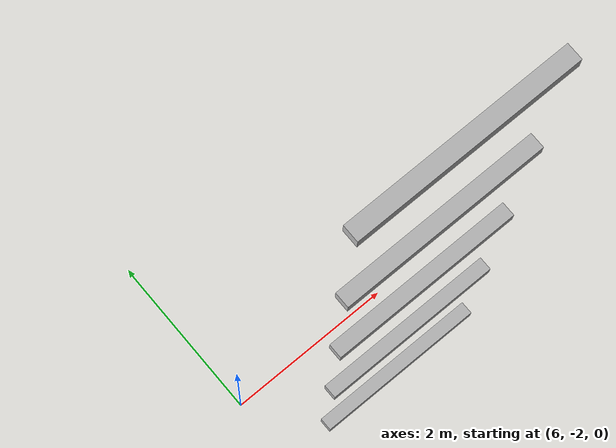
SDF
<sdf version="1.7">
 <world name="default">
  <model name="orthogonal_747_2.000.15_TS">
   <static>1</static>
   <link name="x_link_1_1_6">
    <inertial>
     <mass>1</mass>
     <inertia>
      <ixx>0.166667</ixx>
      <ixy>0</ixy>
      <ixz>0</ixz>
      <iyy>0.166667</iyy>
      <iyz>0</iyz>
      <izz>0.166667</izz>
     </inertia>
    </inertial>
    <pose>13.975 2.15 3.225 0 -0 0</pose>
    <visual name="visual_0">
     <laser_retro>1100</laser_retro>
     <geometry><box><size>2 1e-06 0.15</size></box></geometry>
     <material>
      <script><name>Gazebo/Grey</name><uri>file://media/materials/scripts/gazebo.material</uri></script>
      <shader type="pixel"><normal_map>__default__</normal_map></shader>
      <ambient>0.678 0.498 0.659 1</ambient>
      <diffuse>0.7 0.7 0.7 1</diffuse>
      <specular>0.01 0.01 0.01 1</specular>
      <emissive>0 0 0 1</emissive>
     </material>
     <pose>0 -0.075 0 0 -0 0</pose>
     <transparency>1</transparency>
    </visual>
    <visual name="visual_1">
     <laser_retro>1101</laser_retro>
     <geometry><box><size>2 1e-06 0.15</size></box></geometry>
     <material>
      <script><name>Gazebo/Grey</name><uri>file://media/materials/scripts/gazebo.material</uri></script>
      <shader type="pixel"><normal_map>__default__</normal_map></shader>
      <ambient>0.447 0.624 0.812 1</ambient>
      <diffuse>0.7 0.7 0.7 1</diffuse>
      <specular>0.01 0.01 0.01 1</specular>
      <emissive>0 0 0 1</emissive>
     </material>
     <pose>0 0.075 0 0 -0 0</pose>
     <transparency>1</transparency>
    </visual>
    <visual name="visual_2">
     <laser_retro>1102</laser_retro>
     <geometry><box><size>2 0.15 1e-06</size></box></geometry>
     <material>
      <script><name>Gazebo/Grey</name><uri>file://media/materials/scripts/gazebo.material</uri></script>
      <shader type="pixel"><normal_map>__default__</normal_map></shader>
      <ambient>0.988 0.686 0.243 1</ambient>
      <diffuse>0.7 0.7 0.7 1</diffuse>
      <specular>0.01 0.01 0.01 1</specular>
      <emissive>0 0 0 1</emissive>
     </material>
     <pose>0 0 -0.075 0 -0 0</pose>
     <transparency>1</transparency>
    </visual>
    <visual name="visual_3">
     <laser_retro>1103</laser_retro>
     <geometry><box><size>1e-06 0.15 0.15</size></box></geometry>
     <material>
      <script><name>Gazebo/Grey</name><uri>file://media/materials/scripts/gazebo.material</uri></script>
      <shader type="pixel"><normal_map>__default__</normal_map></shader>
      <ambient>0.988 0.914 0.31 1</ambient>
      <diffuse>0.7 0.7 0.7 1</diffuse>
      <specular>0.01 0.01 0.01 1</specular>
      <emissive>0 0 0 1</emissive>
     </material>
     <pose>1 0 0 0 -0 0</pose>
     <transparency>1</transparency>
    </visual>
    <visual name="visual_4">
     <laser_retro>1104</laser_retro>
     <geometry><box><size>2 0.15 1e-06</size></box></geometry>
     <material>
      <script><name>Gazebo/Grey</name><uri>file://media/materials/scripts/gazebo.material</uri></script>
      <shader type="pixel"><normal_map>__default__</normal_map></shader>
      <ambient>0.937 0.161 0.161 1</ambient>
      <diffuse>0.7 0.7 0.7 1</diffuse>
      <specular>0.01 0.01 0.01 1</specular>
      <emissive>0 0 0 1</emissive>
     </material>
     <pose>0 0 0.075 0 -0 0</pose>
     <transparency>1</transparency>
    </visual>
    <visual name="visual_5">
     <laser_retro>1105</laser_retro>
     <geometry><box><size>1e-06 0.15 0.15</size></box></geometry>
     <material>
      <script><name>Gazebo/Grey</name><uri>file://media/materials/scripts/gazebo.material</uri></script>
      <shader type="pixel"><normal_map>__default__</normal_map></shader>
      <ambient>0.541 0.886 0.204 1</ambient>
      <diffuse>0.7 0.7 0.7 1</diffuse>
      <specular>0.01 0.01 0.01 1</specular>
      <emissive>0 0 0 1</emissive>
     </material>
     <pose>-1 0 0 0 -0 0</pose>
     <transparency>1</transparency>
    </visual>
    <visual name="visual_texture">
     <geometry><box><size>1.9998 0.149985 0.149985</size></box></geometry>
     <material>
      <script>
       <uri>model://BASE_MODELS/simple_block_v2_textured/materials/scripts</uri>
       <uri>model://BASE_MODELS/simple_block_v2_textured/materials/textures</uri>
       <name>metal</name>
      </script>
     </material>
     <laser_retro>1106</laser_retro>
    </visual>
    <collision name="collision">
     <geometry><box><size>2 0.15 0.15</size></box></geometry>
     <surface>
      <friction>
       <ode><mu>1</mu><mu2>1</mu2><fdir1>0 0 0</fdir1><slip1>0</slip1><slip2>0</slip2></ode>
       <torsional>
        <coefficient>1</coefficient>
        <patch_radius>0</patch_radius>
        <surface_radius>0</surface_radius>
        <use_patch_radius>1</use_patch_radius>
        <ode><slip>0</slip></ode>
       </torsional>
      </friction>
      <bounce><restitution_coefficient>0</restitution_coefficient><threshold>1e+06</threshold></bounce>
      <contact>
       <collide_without_contact>0</collide_without_contact>
       <collide_without_contact_bitmask>1</collide_without_contact_bitmask>
       <collide_bitmask>1</collide_bitmask>
       <ode>
        <soft_cfm>0</soft_cfm>
        <soft_erp>0.2</soft_erp>
        <kp>1e+13</kp>
        <kd>1</kd>
        <max_vel>0.01</max_vel>
        <min_depth>0</min_depth>
       </ode>
       <bullet>
        <split_impulse>1</split_impulse>
        <split_impulse_penetration_threshold>-0.01</split_impulse_penetration_threshold>
        <soft_cfm>0</soft_cfm>
        <soft_erp>0.2</soft_erp>
        <kp>1e+13</kp>
        <kd>1</kd>
       </bullet>
      </contact>
     </surface>
    </collision>
   </link>
   <link name="x_link_2_1_6">
    <inertial>
     <mass>1</mass>
     <inertia>
      <ixx>0.166667</ixx>
      <ixy>0</ixy>
      <ixz>0</ixz>
      <iyy>0.166667</iyy>
      <iyz>0</iyz>
      <izz>0.166667</izz>
     </inertia>
    </inertial>
    <pose>13.975 2.15 5.375 0 -0 0</pose>
    <visual name="visual_0">
     <laser_retro>2003</laser_retro>
     <geometry><box><size>2 1e-06 0.15</size></box></geometry>
     <material>
      <script><name>Gazebo/Grey</name><uri>file://media/materials/scripts/gazebo.material</uri></script>
      <shader type="pixel"><normal_map>__default__</normal_map></shader>
      <ambient>0.678 0.498 0.659 1</ambient>
      <diffuse>0.7 0.7 0.7 1</diffuse>
      <specular>0.01 0.01 0.01 1</specular>
      <emissive>0 0 0 1</emissive>
     </material>
     <pose>0 -0.075 0 0 -0 0</pose>
     <transparency>1</transparency>
    </visual>
    <visual name="visual_1">
     <laser_retro>2004</laser_retro>
     <geometry><box><size>2 1e-06 0.15</size></box></geometry>
     <material>
      <script><name>Gazebo/Grey</name><uri>file://media/materials/scripts/gazebo.material</uri></script>
      <shader type="pixel"><normal_map>__default__</normal_map></shader>
      <ambient>0.447 0.624 0.812 1</ambient>
      <diffuse>0.7 0.7 0.7 1</diffuse>
      <specular>0.01 0.01 0.01 1</specular>
      <emissive>0 0 0 1</emissive>
     </material>
     <pose>0 0.075 0 0 -0 0</pose>
     <transparency>1</transparency>
    </visual>
    <visual name="visual_2">
     <laser_retro>2005</laser_retro>
     <geometry><box><size>2 0.15 1e-06</size></box></geometry>
     <material>
      <script><name>Gazebo/Grey</name><uri>file://media/materials/scripts/gazebo.material</uri></script>
      <shader type="pixel"><normal_map>__default__</normal_map></shader>
      <ambient>0.988 0.686 0.243 1</ambient>
      <diffuse>0.7 0.7 0.7 1</diffuse>
      <specular>0.01 0.01 0.01 1</specular>
      <emissive>0 0 0 1</emissive>
     </material>
     <pose>0 0 -0.075 0 -0 0</pose>
     <transparency>1</transparency>
    </visual>
    <visual name="visual_3">
     <laser_retro>2006</laser_retro>
     <geometry><box><size>1e-06 0.15 0.15</size></box></geometry>
     <material>
      <script><name>Gazebo/Grey</name><uri>file://media/materials/scripts/gazebo.material</uri></script>
      <shader type="pixel"><normal_map>__default__</normal_map></shader>
      <ambient>0.988 0.914 0.31 1</ambient>
      <diffuse>0.7 0.7 0.7 1</diffuse>
      <specular>0.01 0.01 0.01 1</specular>
      <emissive>0 0 0 1</emissive>
     </material>
     <pose>1 0 0 0 -0 0</pose>
     <transparency>1</transparency>
    </visual>
    <visual name="visual_4">
     <laser_retro>2007</laser_retro>
     <geometry><box><size>2 0.15 1e-06</size></box></geometry>
     <material>
      <script><name>Gazebo/Grey</name><uri>file://media/materials/scripts/gazebo.material</uri></script>
      <shader type="pixel"><normal_map>__default__</normal_map></shader>
      <ambient>0.937 0.161 0.161 1</ambient>
      <diffuse>0.7 0.7 0.7 1</diffuse>
      <specular>0.01 0.01 0.01 1</specular>
      <emissive>0 0 0 1</emissive>
     </material>
     <pose>0 0 0.075 0 -0 0</pose>
     <transparency>1</transparency>
    </visual>
    <visual name="visual_5">
     <laser_retro>2008</laser_retro>
     <geometry><box><size>1e-06 0.15 0.15</size></box></geometry>
     <material>
      <script><name>Gazebo/Grey</name><uri>file://media/materials/scripts/gazebo.material</uri></script>
      <shader type="pixel"><normal_map>__default__</normal_map></shader>
      <ambient>0.541 0.886 0.204 1</ambient>
      <diffuse>0.7 0.7 0.7 1</diffuse>
      <specular>0.01 0.01 0.01 1</specular>
      <emissive>0 0 0 1</emissive>
     </material>
     <pose>-1 0 0 0 -0 0</pose>
     <transparency>1</transparency>
    </visual>
    <visual name="visual_texture">
     <geometry><box><size>1.9998 0.149985 0.149985</size></box></geometry>
     <material>
      <script>
       <uri>model://BASE_MODELS/simple_block_v2_textured/materials/scripts</uri>
       <uri>model://BASE_MODELS/simple_block_v2_textured/materials/textures</uri>
       <name>metal</name>
      </script>
     </material>
     <laser_retro>2009</laser_retro>
    </visual>
    <collision name="collision">
     <geometry><box><size>2 0.15 0.15</size></box></geometry>
     <surface>
      <friction>
       <ode><mu>1</mu><mu2>1</mu2><fdir1>0 0 0</fdir1><slip1>0</slip1><slip2>0</slip2></ode>
       <torsional>
        <coefficient>1</coefficient>
        <patch_radius>0</patch_radius>
        <surface_radius>0</surface_radius>
        <use_patch_radius>1</use_patch_radius>
        <ode><slip>0</slip></ode>
       </torsional>
      </friction>
      <bounce><restitution_coefficient>0</restitution_coefficient><threshold>1e+06</threshold></bounce>
      <contact>
       <collide_without_contact>0</collide_without_contact>
       <collide_without_contact_bitmask>1</collide_without_contact_bitmask>
       <collide_bitmask>1</collide_bitmask>
       <ode>
        <soft_cfm>0</soft_cfm>
        <soft_erp>0.2</soft_erp>
        <kp>1e+13</kp>
        <kd>1</kd>
        <max_vel>0.01</max_vel>
        <min_depth>0</min_depth>
       </ode>
       <bullet>
        <split_impulse>1</split_impulse>
        <split_impulse_penetration_threshold>-0.01</split_impulse_penetration_threshold>
        <soft_cfm>0</soft_cfm>
        <soft_erp>0.2</soft_erp>
        <kp>1e+13</kp>
        <kd>1</kd>
       </bullet>
      </contact>
     </surface>
    </collision>
   </link>
   <link name="x_link_3_1_6">
    <inertial>
     <mass>1</mass>
     <inertia>
      <ixx>0.166667</ixx>
      <ixy>0</ixy>
      <ixz>0</ixz>
      <iyy>0.166667</iyy>
      <iyz>0</iyz>
      <izz>0.166667</izz>
     </inertia>
    </inertial>
    <pose>13.975 2.15 7.525 0 -0 0</pose>
    <visual name="visual_0">
     <laser_retro>2906</laser_retro>
     <geometry><box><size>2 1e-06 0.15</size></box></geometry>
     <material>
      <script><name>Gazebo/Grey</name><uri>file://media/materials/scripts/gazebo.material</uri></script>
      <shader type="pixel"><normal_map>__default__</normal_map></shader>
      <ambient>0.678 0.498 0.659 1</ambient>
      <diffuse>0.7 0.7 0.7 1</diffuse>
      <specular>0.01 0.01 0.01 1</specular>
      <emissive>0 0 0 1</emissive>
     </material>
     <pose>0 -0.075 0 0 -0 0</pose>
     <transparency>1</transparency>
    </visual>
    <visual name="visual_1">
     <laser_retro>2907</laser_retro>
     <geometry><box><size>2 1e-06 0.15</size></box></geometry>
     <material>
      <script><name>Gazebo/Grey</name><uri>file://media/materials/scripts/gazebo.material</uri></script>
      <shader type="pixel"><normal_map>__default__</normal_map></shader>
      <ambient>0.447 0.624 0.812 1</ambient>
      <diffuse>0.7 0.7 0.7 1</diffuse>
      <specular>0.01 0.01 0.01 1</specular>
      <emissive>0 0 0 1</emissive>
     </material>
     <pose>0 0.075 0 0 -0 0</pose>
     <transparency>1</transparency>
    </visual>
    <visual name="visual_2">
     <laser_retro>2908</laser_retro>
     <geometry><box><size>2 0.15 1e-06</size></box></geometry>
     <material>
      <script><name>Gazebo/Grey</name><uri>file://media/materials/scripts/gazebo.material</uri></script>
      <shader type="pixel"><normal_map>__default__</normal_map></shader>
      <ambient>0.988 0.686 0.243 1</ambient>
      <diffuse>0.7 0.7 0.7 1</diffuse>
      <specular>0.01 0.01 0.01 1</specular>
      <emissive>0 0 0 1</emissive>
     </material>
     <pose>0 0 -0.075 0 -0 0</pose>
     <transparency>1</transparency>
    </visual>
    <visual name="visual_3">
     <laser_retro>2909</laser_retro>
     <geometry><box><size>1e-06 0.15 0.15</size></box></geometry>
     <material>
      <script><name>Gazebo/Grey</name><uri>file://media/materials/scripts/gazebo.material</uri></script>
      <shader type="pixel"><normal_map>__default__</normal_map></shader>
      <ambient>0.988 0.914 0.31 1</ambient>
      <diffuse>0.7 0.7 0.7 1</diffuse>
      <specular>0.01 0.01 0.01 1</specular>
      <emissive>0 0 0 1</emissive>
     </material>
     <pose>1 0 0 0 -0 0</pose>
     <transparency>1</transparency>
    </visual>
    <visual name="visual_4">
     <laser_retro>2910</laser_retro>
     <geometry><box><size>2 0.15 1e-06</size></box></geometry>
     <material>
      <script><name>Gazebo/Grey</name><uri>file://media/materials/scripts/gazebo.material</uri></script>
      <shader type="pixel"><normal_map>__default__</normal_map></shader>
      <ambient>0.937 0.161 0.161 1</ambient>
      <diffuse>0.7 0.7 0.7 1</diffuse>
      <specular>0.01 0.01 0.01 1</specular>
      <emissive>0 0 0 1</emissive>
     </material>
     <pose>0 0 0.075 0 -0 0</pose>
     <transparency>1</transparency>
    </visual>
    <visual name="visual_5">
     <laser_retro>2911</laser_retro>
     <geometry><box><size>1e-06 0.15 0.15</size></box></geometry>
     <material>
      <script><name>Gazebo/Grey</name><uri>file://media/materials/scripts/gazebo.material</uri></script>
      <shader type="pixel"><normal_map>__default__</normal_map></shader>
      <ambient>0.541 0.886 0.204 1</ambient>
      <diffuse>0.7 0.7 0.7 1</diffuse>
      <specular>0.01 0.01 0.01 1</specular>
      <emissive>0 0 0 1</emissive>
     </material>
     <pose>-1 0 0 0 -0 0</pose>
     <transparency>1</transparency>
    </visual>
    <visual name="visual_texture">
     <geometry><box><size>1.9998 0.149985 0.149985</size></box></geometry>
     <material>
      <script>
       <uri>model://BASE_MODELS/simple_block_v2_textured/materials/scripts</uri>
       <uri>model://BASE_MODELS/simple_block_v2_textured/materials/textures</uri>
       <name>metal</name>
      </script>
     </material>
     <laser_retro>2912</laser_retro>
    </visual>
    <collision name="collision">
     <geometry><box><size>2 0.15 0.15</size></box></geometry>
     <surface>
      <friction>
       <ode><mu>1</mu><mu2>1</mu2><fdir1>0 0 0</fdir1><slip1>0</slip1><slip2>0</slip2></ode>
       <torsional>
        <coefficient>1</coefficient>
        <patch_radius>0</patch_radius>
        <surface_radius>0</surface_radius>
        <use_patch_radius>1</use_patch_radius>
        <ode><slip>0</slip></ode>
       </torsional>
      </friction>
      <bounce><restitution_coefficient>0</restitution_coefficient><threshold>1e+06</threshold></bounce>
      <contact>
       <collide_without_contact>0</collide_without_contact>
       <collide_without_contact_bitmask>1</collide_without_contact_bitmask>
       <collide_bitmask>1</collide_bitmask>
       <ode>
        <soft_cfm>0</soft_cfm>
        <soft_erp>0.2</soft_erp>
        <kp>1e+13</kp>
        <kd>1</kd>
        <max_vel>0.01</max_vel>
        <min_depth>0</min_depth>
       </ode>
       <bullet>
        <split_impulse>1</split_impulse>
        <split_impulse_penetration_threshold>-0.01</split_impulse_penetration_threshold>
        <soft_cfm>0</soft_cfm>
        <soft_erp>0.2</soft_erp>
        <kp>1e+13</kp>
        <kd>1</kd>
       </bullet>
      </contact>
     </surface>
    </collision>
   </link>
   <link name="x_link_4_1_6">
    <inertial>
     <mass>1</mass>
     <inertia>
      <ixx>0.166667</ixx>
      <ixy>0</ixy>
      <ixz>0</ixz>
      <iyy>0.166667</iyy>
      <iyz>0</iyz>
      <izz>0.166667</izz>
     </inertia>
    </inertial>
    <pose>13.975 2.15 9.675 0 -0 0</pose>
    <visual name="visual_0">
     <laser_retro>3809</laser_retro>
     <geometry><box><size>2 1e-06 0.15</size></box></geometry>
     <material>
      <script><name>Gazebo/Grey</name><uri>file://media/materials/scripts/gazebo.material</uri></script>
      <shader type="pixel"><normal_map>__default__</normal_map></shader>
      <ambient>0.678 0.498 0.659 1</ambient>
      <diffuse>0.7 0.7 0.7 1</diffuse>
      <specular>0.01 0.01 0.01 1</specular>
      <emissive>0 0 0 1</emissive>
     </material>
     <pose>0 -0.075 0 0 -0 0</pose>
     <transparency>1</transparency>
    </visual>
    <visual name="visual_1">
     <laser_retro>3810</laser_retro>
     <geometry><box><size>2 1e-06 0.15</size></box></geometry>
     <material>
      <script><name>Gazebo/Grey</name><uri>file://media/materials/scripts/gazebo.material</uri></script>
      <shader type="pixel"><normal_map>__default__</normal_map></shader>
      <ambient>0.447 0.624 0.812 1</ambient>
      <diffuse>0.7 0.7 0.7 1</diffuse>
      <specular>0.01 0.01 0.01 1</specular>
      <emissive>0 0 0 1</emissive>
     </material>
     <pose>0 0.075 0 0 -0 0</pose>
     <transparency>1</transparency>
    </visual>
    <visual name="visual_2">
     <laser_retro>3811</laser_retro>
     <geometry><box><size>2 0.15 1e-06</size></box></geometry>
     <material>
      <script><name>Gazebo/Grey</name><uri>file://media/materials/scripts/gazebo.material</uri></script>
      <shader type="pixel"><normal_map>__default__</normal_map></shader>
      <ambient>0.988 0.686 0.243 1</ambient>
      <diffuse>0.7 0.7 0.7 1</diffuse>
      <specular>0.01 0.01 0.01 1</specular>
      <emissive>0 0 0 1</emissive>
     </material>
     <pose>0 0 -0.075 0 -0 0</pose>
     <transparency>1</transparency>
    </visual>
    <visual name="visual_3">
     <laser_retro>3812</laser_retro>
     <geometry><box><size>1e-06 0.15 0.15</size></box></geometry>
     <material>
      <script><name>Gazebo/Grey</name><uri>file://media/materials/scripts/gazebo.material</uri></script>
      <shader type="pixel"><normal_map>__default__</normal_map></shader>
      <ambient>0.988 0.914 0.31 1</ambient>
      <diffuse>0.7 0.7 0.7 1</diffuse>
      <specular>0.01 0.01 0.01 1</specular>
      <emissive>0 0 0 1</emissive>
     </material>
     <pose>1 0 0 0 -0 0</pose>
     <transparency>1</transparency>
    </visual>
    <visual name="visual_4">
     <laser_retro>3813</laser_retro>
     <geometry><box><size>2 0.15 1e-06</size></box></geometry>
     <material>
      <script><name>Gazebo/Grey</name><uri>file://media/materials/scripts/gazebo.material</uri></script>
      <shader type="pixel"><normal_map>__default__</normal_map></shader>
      <ambient>0.937 0.161 0.161 1</ambient>
      <diffuse>0.7 0.7 0.7 1</diffuse>
      <specular>0.01 0.01 0.01 1</specular>
      <emissive>0 0 0 1</emissive>
     </material>
     <pose>0 0 0.075 0 -0 0</pose>
     <transparency>1</transparency>
    </visual>
    <visual name="visual_5">
     <laser_retro>3814</laser_retro>
     <geometry><box><size>1e-06 0.15 0.15</size></box></geometry>
     <material>
      <script><name>Gazebo/Grey</name><uri>file://media/materials/scripts/gazebo.material</uri></script>
      <shader type="pixel"><normal_map>__default__</normal_map></shader>
      <ambient>0.541 0.886 0.204 1</ambient>
      <diffuse>0.7 0.7 0.7 1</diffuse>
      <specular>0.01 0.01 0.01 1</specular>
      <emissive>0 0 0 1</emissive>
     </material>
     <pose>-1 0 0 0 -0 0</pose>
     <transparency>1</transparency>
    </visual>
    <visual name="visual_texture">
     <geometry><box><size>1.9998 0.149985 0.149985</size></box></geometry>
     <material>
      <script>
       <uri>model://BASE_MODELS/simple_block_v2_textured/materials/scripts</uri>
       <uri>model://BASE_MODELS/simple_block_v2_textured/materials/textures</uri>
       <name>metal</name>
      </script>
     </material>
     <laser_retro>3815</laser_retro>
    </visual>
    <collision name="collision">
     <geometry><box><size>2 0.15 0.15</size></box></geometry>
     <surface>
      <friction>
       <ode><mu>1</mu><mu2>1</mu2><fdir1>0 0 0</fdir1><slip1>0</slip1><slip2>0</slip2></ode>
       <torsional>
        <coefficient>1</coefficient>
        <patch_radius>0</patch_radius>
        <surface_radius>0</surface_radius>
        <use_patch_radius>1</use_patch_radius>
        <ode><slip>0</slip></ode>
       </torsional>
      </friction>
      <bounce><restitution_coefficient>0</restitution_coefficient><threshold>1e+06</threshold></bounce>
      <contact>
       <collide_without_contact>0</collide_without_contact>
       <collide_without_contact_bitmask>1</collide_without_contact_bitmask>
       <collide_bitmask>1</collide_bitmask>
       <ode>
        <soft_cfm>0</soft_cfm>
        <soft_erp>0.2</soft_erp>
        <kp>1e+13</kp>
        <kd>1</kd>
        <max_vel>0.01</max_vel>
        <min_depth>0</min_depth>
       </ode>
       <bullet>
        <split_impulse>1</split_impulse>
        <split_impulse_penetration_threshold>-0.01</split_impulse_penetration_threshold>
        <soft_cfm>0</soft_cfm>
        <soft_erp>0.2</soft_erp>
        <kp>1e+13</kp>
        <kd>1</kd>
       </bullet>
      </contact>
     </surface>
    </collision>
   </link>
   <link name="x_link_5_1_6">
    <inertial>
     <mass>1</mass>
     <inertia>
      <ixx>0.166667</ixx>
      <ixy>0</ixy>
      <ixz>0</ixz>
      <iyy>0.166667</iyy>
      <iyz>0</iyz>
      <izz>0.166667</izz>
     </inertia>
    </inertial>
    <pose>13.975 2.15 11.825 0 -0 0</pose>
    <visual name="visual_0">
     <laser_retro>4712</laser_retro>
     <geometry><box><size>2 1e-06 0.15</size></box></geometry>
     <material>
      <script><name>Gazebo/Grey</name><uri>file://media/materials/scripts/gazebo.material</uri></script>
      <shader type="pixel"><normal_map>__default__</normal_map></shader>
      <ambient>0.678 0.498 0.659 1</ambient>
      <diffuse>0.7 0.7 0.7 1</diffuse>
      <specular>0.01 0.01 0.01 1</specular>
      <emissive>0 0 0 1</emissive>
     </material>
     <pose>0 -0.075 0 0 -0 0</pose>
     <transparency>1</transparency>
    </visual>
    <visual name="visual_1">
     <laser_retro>4713</laser_retro>
     <geometry><box><size>2 1e-06 0.15</size></box></geometry>
     <material>
      <script><name>Gazebo/Grey</name><uri>file://media/materials/scripts/gazebo.material</uri></script>
      <shader type="pixel"><normal_map>__default__</normal_map></shader>
      <ambient>0.447 0.624 0.812 1</ambient>
      <diffuse>0.7 0.7 0.7 1</diffuse>
      <specular>0.01 0.01 0.01 1</specular>
      <emissive>0 0 0 1</emissive>
     </material>
     <pose>0 0.075 0 0 -0 0</pose>
     <transparency>1</transparency>
    </visual>
    <visual name="visual_2">
     <laser_retro>4714</laser_retro>
     <geometry><box><size>2 0.15 1e-06</size></box></geometry>
     <material>
      <script><name>Gazebo/Grey</name><uri>file://media/materials/scripts/gazebo.material</uri></script>
      <shader type="pixel"><normal_map>__default__</normal_map></shader>
      <ambient>0.988 0.686 0.243 1</ambient>
      <diffuse>0.7 0.7 0.7 1</diffuse>
      <specular>0.01 0.01 0.01 1</specular>
      <emissive>0 0 0 1</emissive>
     </material>
     <pose>0 0 -0.075 0 -0 0</pose>
     <transparency>1</transparency>
    </visual>
    <visual name="visual_3">
     <laser_retro>4715</laser_retro>
     <geometry><box><size>1e-06 0.15 0.15</size></box></geometry>
     <material>
      <script><name>Gazebo/Grey</name><uri>file://media/materials/scripts/gazebo.material</uri></script>
      <shader type="pixel"><normal_map>__default__</normal_map></shader>
      <ambient>0.988 0.914 0.31 1</ambient>
      <diffuse>0.7 0.7 0.7 1</diffuse>
      <specular>0.01 0.01 0.01 1</specular>
      <emissive>0 0 0 1</emissive>
     </material>
     <pose>1 0 0 0 -0 0</pose>
     <transparency>1</transparency>
    </visual>
    <visual name="visual_4">
     <laser_retro>4716</laser_retro>
     <geometry><box><size>2 0.15 1e-06</size></box></geometry>
     <material>
      <script><name>Gazebo/Grey</name><uri>file://media/materials/scripts/gazebo.material</uri></script>
      <shader type="pixel"><normal_map>__default__</normal_map></shader>
      <ambient>0.937 0.161 0.161 1</ambient>
      <diffuse>0.7 0.7 0.7 1</diffuse>
      <specular>0.01 0.01 0.01 1</specular>
      <emissive>0 0 0 1</emissive>
     </material>
     <pose>0 0 0.075 0 -0 0</pose>
     <transparency>1</transparency>
    </visual>
    <visual name="visual_5">
     <laser_retro>4717</laser_retro>
     <geometry><box><size>1e-06 0.15 0.15</size></box></geometry>
     <material>
      <script><name>Gazebo/Grey</name><uri>file://media/materials/scripts/gazebo.material</uri></script>
      <shader type="pixel"><normal_map>__default__</normal_map></shader>
      <ambient>0.541 0.886 0.204 1</ambient>
      <diffuse>0.7 0.7 0.7 1</diffuse>
      <specular>0.01 0.01 0.01 1</specular>
      <emissive>0 0 0 1</emissive>
     </material>
     <pose>-1 0 0 0 -0 0</pose>
     <transparency>1</transparency>
    </visual>
    <visual name="visual_texture">
     <geometry><box><size>1.9998 0.149985 0.149985</size></box></geometry>
     <material>
      <script>
       <uri>model://BASE_MODELS/simple_block_v2_textured/materials/scripts</uri>
       <uri>model://BASE_MODELS/simple_block_v2_textured/materials/textures</uri>
       <name>metal</name>
      </script>
     </material>
     <laser_retro>4718</laser_retro>
    </visual>
    <collision name="collision">
     <geometry><box><size>2 0.15 0.15</size></box></geometry>
     <surface>
      <friction>
       <ode><mu>1</mu><mu2>1</mu2><fdir1>0 0 0</fdir1><slip1>0</slip1><slip2>0</slip2></ode>
       <torsional>
        <coefficient>1</coefficient>
        <patch_radius>0</patch_radius>
        <surface_radius>0</surface_radius>
        <use_patch_radius>1</use_patch_radius>
        <ode><slip>0</slip></ode>
       </torsional>
      </friction>
      <bounce><restitution_coefficient>0</restitution_coefficient><threshold>1e+06</threshold></bounce>
      <contact>
       <collide_without_contact>0</collide_without_contact>
       <collide_without_contact_bitmask>1</collide_without_contact_bitmask>
       <collide_bitmask>1</collide_bitmask>
       <ode>
        <soft_cfm>0</soft_cfm>
        <soft_erp>0.2</soft_erp>
        <kp>1e+13</kp>
        <kd>1</kd>
        <max_vel>0.01</max_vel>
        <min_depth>0</min_depth>
       </ode>
       <bullet>
        <split_impulse>1</split_impulse>
        <split_impulse_penetration_threshold>-0.01</split_impulse_penetration_threshold>
        <soft_cfm>0</soft_cfm>
        <soft_erp>0.2</soft_erp>
        <kp>1e+13</kp>
        <kd>1</kd>
       </bullet>
      </contact>
     </surface>
    </collision>
   </link>
   <pose>-6.47624 -5 -2.5 0 -0 0</pose>
  </model>
 </world>
</sdf>
